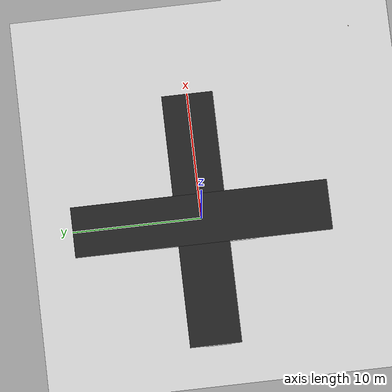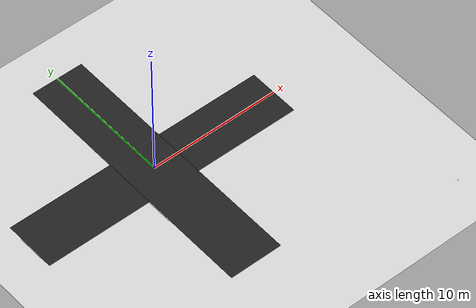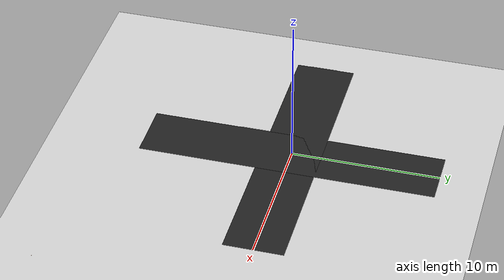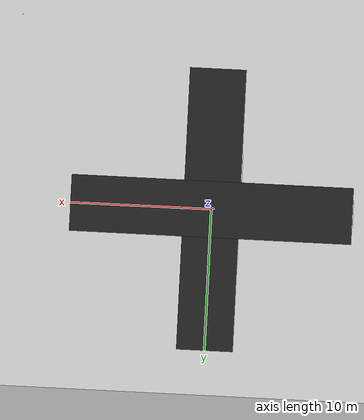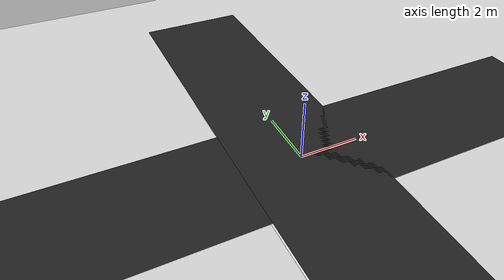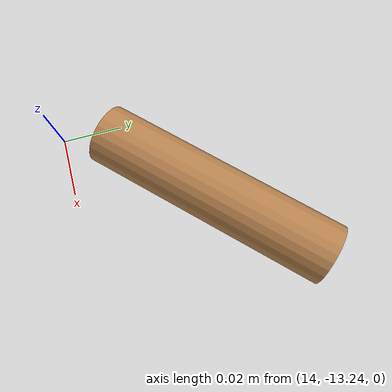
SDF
<sdf version="1.7">
 <world name="default">
  <model name="ground_plane">
   <static>1</static>
   <link name="link">
    <collision name="collision">
     <geometry><plane><normal>0 0 1</normal><size>100 100</size></plane></geometry>
     <surface><friction><ode><mu>100</mu><mu2>50</mu2></ode></friction></surface>
    </collision>
    <visual name="visual">
     <cast_shadows>0</cast_shadows>
     <geometry><plane><normal>0 0 1</normal><size>100 100</size></plane></geometry>
     <material>
      <script><uri>file://media/materials/scripts/gazebo.material</uri><name>Gazebo/Grey</name></script>
     </material>
    </visual>
   </link>
  </model>
  <gravity>0 0 -9.8</gravity>
  <magnetic_field>6e-06 2.3e-05 -4.2e-05</magnetic_field>
  <atmosphere type="adiabatic"/>
  <physics type="ode">
   <max_step_size>0.001</max_step_size>
   <real_time_factor>1</real_time_factor>
   <real_time_update_rate>1000</real_time_update_rate>
  </physics>
  <scene><ambient>0.4 0.4 0.4 1</ambient><background>0.7 0.7 0.7 1</background><shadows>1</shadows></scene>
  <audio><device>default</device></audio>
  <spherical_coordinates>
   <surface_model>EARTH_WGS84</surface_model>
   <latitude_deg>0</latitude_deg>
   <longitude_deg>0</longitude_deg>
   <elevation>0</elevation>
   <heading_deg>0</heading_deg>
  </spherical_coordinates>
  <model name="road">
   <static>1</static>
   <link name="road_link">
    <visual name="road_visual">
     <geometry><plane><normal>0 0 1</normal><size>4 20</size></plane></geometry>
     <material>
      <script>
       <uri>model://road/materials/scripts</uri>
       <uri>model://road/materials/textures</uri>
       <name>Road/BlackTar</name>
      </script>
     </material>
    </visual>
   </link>
   <pose>0 0 0 0 -0 1.57</pose>
  </model>
  <model name="road_0">
   <static>1</static>
   <link name="road_link">
    <visual name="road_visual">
     <geometry><plane><normal>0 0 1</normal><size>4 20</size></plane></geometry>
     <material>
      <script>
       <uri>model://road/materials/scripts</uri>
       <uri>model://road/materials/textures</uri>
       <name>Road/BlackTar</name>
      </script>
     </material>
    </visual>
   </link>
  </model>
  <light name="sun" type="directional">
   <pose>-3.61611 -9.67629 10 0 -0 0</pose>
   <diffuse>0.8 0.8 0.8 1</diffuse>
   <specular>0.2 0.2 0.2 1</specular>
   <attenuation>
    <range>1000</range>
    <constant>0.9</constant>
    <linear>0.01</linear>
    <quadratic>0.001</quadratic>
   </attenuation>
   <direction>-0.5 0.1 -0.9</direction>
   <spot><inner_angle>0</inner_angle><outer_angle>0</outer_angle><falloff>0</falloff></spot>
  </light>
  <model name="wooden_peg">
   <link name="link">
    <pose>0 0 0.04 0 -0 0</pose>
    <inertial>
     <mass>0.0175</mass>
     <inertia>
      <ixx>9.74923e-06</ixx>
      <ixy>0</ixy>
      <ixz>0</ixz>
      <iyy>9.74923e-06</iyy>
      <iyz>0</iyz>
      <izz>8.31797e-07</izz>
     </inertia>
    </inertial>
    <collision name="collision">
     <geometry><cylinder><radius>0.00975</radius><length>0.08</length></cylinder></geometry>
     <surface>
      <contact>
       <poissons_ratio>0.347</poissons_ratio>
       <elastic_modulus>8.8e+09</elastic_modulus>
       <ode><kp>100000</kp><kd>100</kd><max_vel>100</max_vel><min_depth>0.001</min_depth></ode>
      </contact>
      <friction>
       <torsional>
        <coefficient>1</coefficient>
        <use_patch_radius>0</use_patch_radius>
        <surface_radius>0.01</surface_radius>
       </torsional>
      </friction>
     </surface>
    </collision>
    <visual name="visual">
     <geometry><cylinder><radius>0.00975</radius><length>0.08</length></cylinder></geometry>
     <material>
      <script><uri>file://media/materials/scripts/gazebo.material</uri><name>Gazebo/Wood</name></script>
     </material>
    </visual>
   </link>
   <pose>14.0625 -13.1678 0.008749 1.5708 0.710551 -0.794053</pose>
  </model>
  <model name="zebra_crossing">
   <static>1</static>
   <link name="zebra_crossing_link">
    <visual name="zebra_crossing_visual">
     <geometry><plane><normal>0 0 1</normal><size>4 2</size></plane></geometry>
     <material>
      <script>
       <uri>model://zebra_crossing/materials/scripts</uri>
       <uri>model://zebra_crossing/materials/textures</uri>
       <name>ZebraCrossing/White</name>
      </script>
     </material>
    </visual>
   </link>
   <pose>-0.016831 3.09315 0 0 -0 0</pose>
  </model>
  <model name="zebra_crossing_0">
   <static>1</static>
   <link name="zebra_crossing_link">
    <visual name="zebra_crossing_visual">
     <geometry><plane><normal>0 0 1</normal><size>4 2</size></plane></geometry>
     <material>
      <script>
       <uri>model://zebra_crossing/materials/scripts</uri>
       <uri>model://zebra_crossing/materials/textures</uri>
       <name>ZebraCrossing/White</name>
      </script>
     </material>
    </visual>
   </link>
   <pose>-0.05494 -3.002 0 0 -0 0</pose>
  </model>
  <model name="divider">
   <static>1</static>
   <link name="divider_link">
    <visual name="divider_visual">
     <geometry><plane><normal>0 0 1</normal><size>4 2</size></plane></geometry>
     <material>
      <script>
       <uri>model://divider/materials/scripts</uri>
       <uri>model://divider/materials/textures</uri>
       <name>Divider/White</name>
      </script>
     </material>
    </visual>
   </link>
   <pose>8.00216 -0.305266 0 0 -0 0</pose>
  </model>
  <model name="divider_0">
   <static>1</static>
   <link name="divider_link">
    <visual name="divider_visual">
     <geometry><plane><normal>0 0 1</normal><size>4 2</size></plane></geometry>
     <material>
      <script>
       <uri>model://divider/materials/scripts</uri>
       <uri>model://divider/materials/textures</uri>
       <name>Divider/White</name>
      </script>
     </material>
    </visual>
   </link>
   <pose>3.96087 -0.306107 0 0 -0 0</pose>
  </model>
  <model name="divider_1">
   <static>1</static>
   <link name="divider_link">
    <visual name="divider_visual">
     <geometry><plane><normal>0 0 1</normal><size>4 2</size></plane></geometry>
     <material>
      <script>
       <uri>model://divider/materials/scripts</uri>
       <uri>model://divider/materials/textures</uri>
       <name>Divider/White</name>
      </script>
     </material>
    </visual>
   </link>
   <pose>-4.03661 -0.186823 0 0 -0 0</pose>
  </model>
  <model name="divider_2">
   <static>1</static>
   <link name="divider_link">
    <visual name="divider_visual">
     <geometry><plane><normal>0 0 1</normal><size>4 2</size></plane></geometry>
     <material>
      <script>
       <uri>model://divider/materials/scripts</uri>
       <uri>model://divider/materials/textures</uri>
       <name>Divider/White</name>
      </script>
     </material>
    </visual>
   </link>
   <pose>-8.04624 -0.160714 0 0 -0 0</pose>
  </model>
  <model name="divider_3">
   <static>1</static>
   <link name="divider_link">
    <visual name="divider_visual">
     <geometry><plane><normal>0 0 1</normal><size>4 2</size></plane></geometry>
     <material>
      <script>
       <uri>model://divider/materials/scripts</uri>
       <uri>model://divider/materials/textures</uri>
       <name>Divider/White</name>
      </script>
     </material>
    </visual>
   </link>
   <pose>0 -7 0 0 -0 1.57</pose>
  </model>
  <model name="divider_4">
   <static>1</static>
   <link name="divider_link">
    <visual name="divider_visual">
     <geometry><plane><normal>0 0 1</normal><size>4 2</size></plane></geometry>
     <material>
      <script>
       <uri>model://divider/materials/scripts</uri>
       <uri>model://divider/materials/textures</uri>
       <name>Divider/White</name>
      </script>
     </material>
    </visual>
   </link>
   <pose>0 7 0 0 -0 1.57</pose>
  </model>
 </world>
</sdf>
